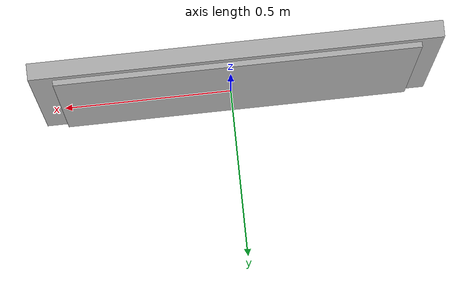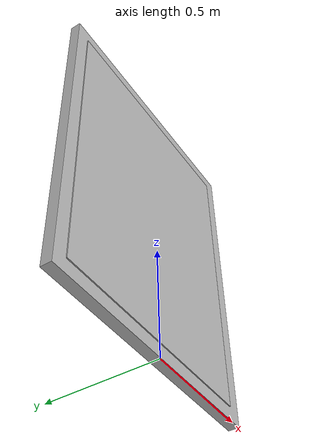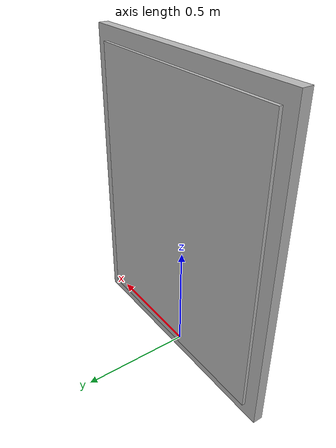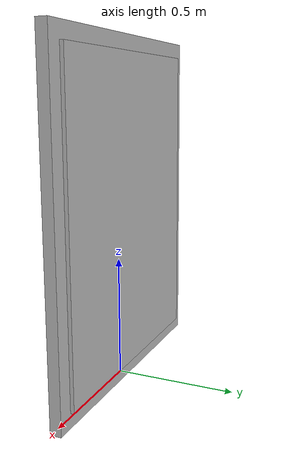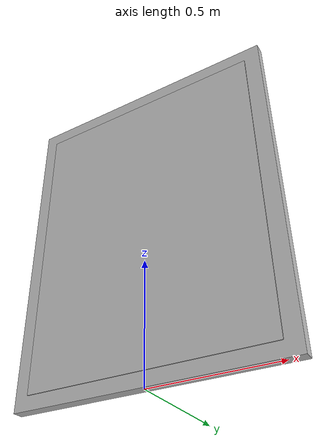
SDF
<?xml version='1.0'?>
<sdf version='1.7'>
  <model name='cuadro_semaforo'>
    <link name='link_1'>
      <inertial>
        <mass>0.0721491</mass>
        <inertia>
          <ixx>0.0117732</ixx>
          <ixy>0</ixy>
          <ixz>0</ixz>
          <iyy>0.0194833</iyy>
          <iyz>0</iyz>
          <izz>0.00773492</izz>
        </inertia>
        <pose>0 0 0 0 -0 0</pose>
      </inertial>
      <pose>-0.008942 0.025101 0.708108 0 -0 0</pose>
      <self_collide>0</self_collide>
      <enable_wind>0</enable_wind>
      <kinematic>0</kinematic>
      <visual name='visual'>
        <pose>0 0 0 0 -0 0</pose>
        <geometry>
          <box>
            <size>1.13332 0.04549 1.3986</size>
          </box>
        </geometry>
        <material>
          <lighting>1</lighting>
          <script>
            <uri>model://cuadro_semaforo/madera/scripts</uri>
            <uri>model://cuadro_semaforo/madera/textures</uri>
            <name>textur/madera</name>
          </script>
          <shader type='pixel'/>
          <emissive>0 0 0 1</emissive>
        </material>
        <transparency>0</transparency>
        <cast_shadows>1</cast_shadows>
      </visual>
      <collision name='collision'>
        <laser_retro>0</laser_retro>
        <max_contacts>10</max_contacts>
        <pose>0 0 0 0 -0 0</pose>
        <geometry>
          <box>
            <size>1.13332 0.04549 1.3986</size>
          </box>
        </geometry>
        <surface>
          <friction>
            <ode>
              <mu>1</mu>
              <mu2>1</mu2>
              <fdir1>0 0 0</fdir1>
              <slip1>0</slip1>
              <slip2>0</slip2>
            </ode>
            <torsional>
              <coefficient>1</coefficient>
              <patch_radius>0</patch_radius>
              <surface_radius>0</surface_radius>
              <use_patch_radius>1</use_patch_radius>
              <ode>
                <slip>0</slip>
              </ode>
            </torsional>
          </friction>
          <bounce>
            <restitution_coefficient>0</restitution_coefficient>
            <threshold>1e+06</threshold>
          </bounce>
          <contact>
            <collide_without_contact>0</collide_without_contact>
            <collide_without_contact_bitmask>1</collide_without_contact_bitmask>
            <collide_bitmask>1</collide_bitmask>
            <ode>
              <soft_cfm>0</soft_cfm>
              <soft_erp>0.2</soft_erp>
              <kp>1e+13</kp>
              <kd>1</kd>
              <max_vel>0.01</max_vel>
              <min_depth>0</min_depth>
            </ode>
            <bullet>
              <split_impulse>1</split_impulse>
              <split_impulse_penetration_threshold>-0.01</split_impulse_penetration_threshold>
              <soft_cfm>0</soft_cfm>
              <soft_erp>0.2</soft_erp>
              <kp>1e+13</kp>
              <kd>1</kd>
            </bullet>
          </contact>
        </surface>
      </collision>
    </link>
    <link name='link_2'>
      <inertial>
        <mass>0.065261</mass>
        <inertia>
          <ixx>0.00887713</ixx>
          <ixy>0</ixy>
          <ixz>0</ixz>
          <iyy>0.0143907</iyy>
          <iyz>0</iyz>
          <izz>0.00555914</izz>
        </inertia>
        <pose>0 0 0 0 -0 0</pose>
      </inertial>
      <pose>-0.011219 0.030459 0.705148 0 -0 0</pose>
      <self_collide>0</self_collide>
      <enable_wind>0</enable_wind>
      <kinematic>0</kinematic>
      <visual name='visual'>
        <pose>0 0 0 0 -0 0</pose>
        <geometry>
          <box>
            <size>1.00896 0.064749 1.27597</size>
          </box>
        </geometry>
        <material>
          <lighting>1</lighting>
          <script>
            <uri>model://cuadro_semaforo/materials/scripts</uri>
            <uri>model://cuadro_semaforo/materials/textures</uri>
            <name>text/semaforo</name>
          </script>
          <shader type='pixel'/>
          <emissive>0 0 0 1</emissive>
        </material>
        <transparency>0</transparency>
        <cast_shadows>1</cast_shadows>
      </visual>
      <collision name='collision'>
        <laser_retro>0</laser_retro>
        <max_contacts>10</max_contacts>
        <pose>0 0 0 0 -0 0</pose>
        <geometry>
          <box>
            <size>1.00896 0.064749 1.27597</size>
          </box>
        </geometry>
        <surface>
          <friction>
            <ode>
              <mu>1</mu>
              <mu2>1</mu2>
              <fdir1>0 0 0</fdir1>
              <slip1>0</slip1>
              <slip2>0</slip2>
            </ode>
            <torsional>
              <coefficient>1</coefficient>
              <patch_radius>0</patch_radius>
              <surface_radius>0</surface_radius>
              <use_patch_radius>1</use_patch_radius>
              <ode>
                <slip>0</slip>
              </ode>
            </torsional>
          </friction>
          <bounce>
            <restitution_coefficient>0</restitution_coefficient>
            <threshold>1e+06</threshold>
          </bounce>
          <contact>
            <collide_without_contact>0</collide_without_contact>
            <collide_without_contact_bitmask>1</collide_without_contact_bitmask>
            <collide_bitmask>1</collide_bitmask>
            <ode>
              <soft_cfm>0</soft_cfm>
              <soft_erp>0.2</soft_erp>
              <kp>1e+13</kp>
              <kd>1</kd>
              <max_vel>0.01</max_vel>
              <min_depth>0</min_depth>
            </ode>
            <bullet>
              <split_impulse>1</split_impulse>
              <split_impulse_penetration_threshold>-0.01</split_impulse_penetration_threshold>
              <soft_cfm>0</soft_cfm>
              <soft_erp>0.2</soft_erp>
              <kp>1e+13</kp>
              <kd>1</kd>
            </bullet>
          </contact>
        </surface>
      </collision>
    </link>
    <static>1</static>
    <allow_auto_disable>1</allow_auto_disable>
  </model>
</sdf>
